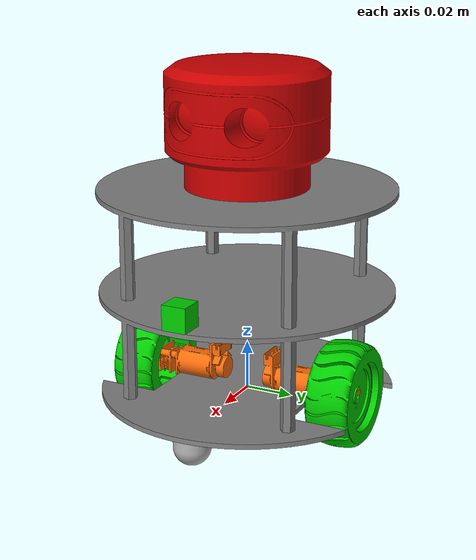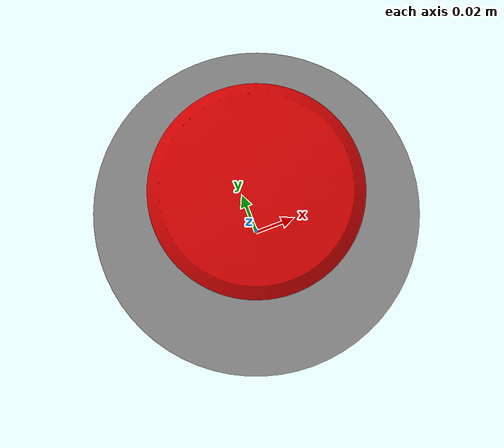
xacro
<?xml version="1.0" ?>
<robot name="hokuyo_laser_robot" xmlns:xacro="http://www.ros.org/wiki/xacro">

<xacro:include filename="$(find hokuyo_laser_robot_description)/urdf/materials.xacro" />
<xacro:include filename="$(find hokuyo_laser_robot_description)/urdf/hokuyo_laser_robot.trans" />
<xacro:include filename="$(find hokuyo_laser_robot_description)/urdf/hokuyo_laser_robot.gazebo" />
<xacro:property name="camera_link" value="0.05" />

<link name="base_link">
  <inertial>
    <origin rpy="0 0 0" xyz="9.043189420795964e-17 -1.0687405679122504e-16 0.04642781600587486"/>
    <mass value="0.0821424569482983"/>
    <inertia ixx="0.000156" ixy="0.0" ixz="0.0" iyy="0.000168" iyz="0.0" izz="0.00015"/>
  </inertial>
  <visual>
    <origin rpy="0 0 0" xyz="0 0 0.0"/>
    <geometry>
      <mesh filename="package://hokuyo_laser_robot_description/meshes/base_link.stl" scale="0.001 0.001 0.001"/>
    </geometry>
    <material name="grey"/>
  </visual>
  <collision>
     <origin rpy="0 0 0" xyz="0 0 0.0"/>
     <geometry>
      <mesh filename="package://hokuyo_laser_robot_description/meshes/base_link.stl" scale="0.001 0.001 0.001"/>
     </geometry>

  </collision>

</link>

<link name="wheelv1_1">
  <inertial>
    <origin rpy="0 0 0" xyz="0.0 0.0 0.0"/>
    <mass value="0.12707504564350522"/>
    <inertia ixx="2.1e-05" ixy="0.0" ixz="0.0" iyy="3.7e-05" iyz="0.0" izz="2.1e-05"/>
  </inertial>
  <visual>
    <origin rpy="0 0 0" xyz="0.0 0.0505 -0.007"/>
    <geometry>
      <mesh filename="package://hokuyo_laser_robot_description/meshes/wheelv1_1.stl" scale="0.001 0.001 0.001"/>
    </geometry>
    <material name="green"/>
  </visual>
  <collision>
    <origin rpy="0 0 0" xyz="0.0 0.0505 -0.007"/>
    <geometry>
      <mesh filename="package://hokuyo_laser_robot_description/meshes/wheelv1_1.stl" scale="0.001 0.001 0.001"/>
    </geometry>
  </collision>
</link>

<link name="wheelv2_1">
  <inertial>
    <origin rpy="0 0 0" xyz="0.0 0.0 0.0"/>
    <mass value="0.12707504564350522"/>
    <inertia ixx="2.1e-05" ixy="0.0" ixz="0.0" iyy="3.7e-05" iyz="0.0" izz="2.1e-05"/>
  </inertial>
  <visual>
    <origin rpy="0 0 0" xyz="0.0 -0.0505 -0.007"/>
    <geometry>
      <mesh filename="package://hokuyo_laser_robot_description/meshes/wheelv2_1.stl" scale="0.001 0.001 0.001"/>
    </geometry>
    <material name="green"/>
  </visual>
  <collision>
    <origin  rpy="0 0 0" xyz="0.0 -0.0505 -0.007"/>
    <geometry>
      <mesh filename="package://hokuyo_laser_robot_description/meshes/wheelv2_1.stl" scale="0.001 0.001 0.001"/>
    </geometry>
  </collision>
</link>

<link name="caster1_1">
  <inertial>
    <origin rpy="0 0 0" xyz="0.047 1.0470961914283186e-18 -0.006130208333333334"/>
    <mass value="0.016646514073208912"/>
    <inertia ixx="0.0" ixy="0.0" ixz="0.0" iyy="0.0" iyz="0.0" izz="0.0"/>
  </inertial>
  <visual>
    <origin rpy="0 0 0" xyz="-0.047 0.0 7.25e-3"/>
    <geometry>
      <mesh filename="package://hokuyo_laser_robot_description/meshes/caster1_1.stl" scale="0.001 0.001 0.001"/>
    </geometry>
    <material name="silver"/>
  </visual>
  <collision>
    <origin rpy="0 0 0" xyz="-0.047 0.0 7.25e-3"/>
    <geometry>
      <mesh filename="package://hokuyo_laser_robot_description/meshes/caster1_1.stl" scale="0.001 0.001 0.001"/>
   </geometry>
  </collision>
</link>

<link name="caster1_2">
  <inertial>
    <origin rpy="0 0 0" xyz="-0.047 1.0470961914283186e-18 -0.006130208333333334"/>
    <mass value="0.016646514073208912"/>
    <inertia ixx="0.0" ixy="0.0" ixz="0.0" iyy="0.0" iyz="0.0" izz="0.0"/>
  </inertial>
  <visual>
    <origin rpy="0 0 0" xyz="0.047 0.0 7.25e-3"/>
    <geometry>
      <mesh filename="package://hokuyo_laser_robot_description/meshes/caster1_2.stl" scale="0.001 0.001 0.001"/>
    </geometry>
    <material name="silver"/>
  </visual>
  <collision>
    <origin rpy="0 0 0" xyz="0.047 0.0 7.25e-3"/>
    <geometry>
      <mesh filename="package://hokuyo_laser_robot_description/meshes/caster1_2.stl" scale="0.001 0.001 0.001"/>
   </geometry>
  </collision>
</link>

<link name="Scanning_LiDAR_v1_1">
  <inertial>
    <!--origin rpy="0 0 0" xyz="0.0004962013390556115 2.772833039489292e-11 0.09116247912672887"/-->
    <origin rpy="0 0 0" xyz="0.0007 5.772833039489292e-11 -0.120"/>
    <mass value="0.20618724895536297"/>
    <inertia ixx="3.9e-05" ixy="0.0" ixz="-2e-06" iyy="3.9e-05" iyz="0.0" izz="6.6e-05"/>
  </inertial>
  <visual>
    <origin rpy="0 0 0" xyz="0.0 0.0 -0.115"/>
    <geometry>
      <mesh filename="package://hokuyo_laser_robot_description/meshes/Scanning_LiDAR_v1_1.stl" scale="0.001 0.001 0.001"/>
    </geometry>
    <material name="red"/>
  </visual>
  <collision>
     <origin rpy="0 0 0" xyz="0.0 0.0 -0.115"/>
   <geometry>
      <mesh filename="package://hokuyo_laser_robot_description/meshes/Scanning_LiDAR_v1_1.stl" scale="0.001 0.001 0.001"/>
      </geometry>
  </collision>
</link>

<link name="camera_link">
    <collision>
      <origin xyz="0 0 0" rpy="0 0 0"/>
      <geometry>
    <box size="0.010 0.010 0.010"/>
      </geometry>
    </collision>

    <visual>
      <origin xyz="0 0 0" rpy="0 0 0"/>
      <geometry>
       <box size="0.010 0.010 0.010"/>
      </geometry>
      <material name="green"/>
    </visual>

    <inertial>
      <mass value="1e-5" />
      <origin xyz="0 0 0" rpy="0 0 0"/>
      <inertia ixx="1e-6" ixy="0" ixz="0" iyy="1e-6" iyz="0" izz="1e-6" />
    </inertial>
  </link>

<link name="motorv1_1">
  <inertial>
    <origin rpy="0 0 0" xyz="2.6844399149895193e-05 0.006886854807477125 0.005517296211487611"/>
    <mass value="0.020522858123399677"/>
    <inertia ixx="2e-06" ixy="0.0" ixz="0.0" iyy="0.0" iyz="0.0" izz="2e-06"/>
  </inertial>
  <visual>
    <origin rpy="0 0 0" xyz="0.0 0.023 -0.007"/>
    <geometry>
      <mesh filename="package://hokuyo_laser_robot_description/meshes/motorv1_1.stl" scale="0.001 0.001 0.001"/>
    </geometry>
    <material name="orange"/>
  </visual>
  <collision>
  <origin rpy="0 0 0" xyz="0.0 0.023 -0.007"/>
    <geometry>
      <mesh filename="package://hokuyo_laser_robot_description/meshes/motorv1_1.stl" scale="0.001 0.001 0.001"/>
    </geometry>
  </collision>
</link>

<link name="motorv2_1">
  <inertial>
    <origin rpy="0 0 0" xyz="-2.6844399149895193e-05 -0.006886854807477125 0.005517296211487611"/>
    <mass value="0.020522858123399677"/>
    <inertia ixx="2e-06" ixy="0.0" ixz="0.0" iyy="0.0" iyz="0.0" izz="2e-06"/>
  </inertial>
  <visual>

   <origin rpy="0 0 0" xyz="0.0 -0.023 -0.007"/>
    <geometry>
      <mesh filename="package://hokuyo_laser_robot_description/meshes/motorv2_1.stl" scale="0.001 0.001 0.001"/>
    </geometry>
    <material name="orange"/>
  </visual>
  <collision>
  <origin  rpy="0 0 0" xyz="0.0 -0.023 -0.007"/>
    <geometry>
      <mesh filename="package://hokuyo_laser_robot_description/meshes/motorv2_1.stl" scale="0.001 0.001 0.001"/>
    </geometry>
  </collision>
</link>

<joint name="right_wheel_joint" type="continuous">
  <origin rpy="0 0 0" xyz="0.0 -0.05 0.00562"/>
  <parent link="base_link"/>
  <child link="wheelv1_1"/>
  <axis xyz="0 1 0" />
</joint>

<joint name="left_wheel_joint" type="continuous">
  <origin rpy="0 0 0" xyz="0.0 0.05 0.00562"/>
  <parent link="base_link"/>
  <child link="wheelv2_1"/>
  <axis xyz="0 1 0" />
</joint>

<joint name="Rigid7" type="fixed">
  <origin rpy="0 0 0" xyz="0.047 0.0 -7.25e-3"/>
  <parent link="base_link"/>
  <child link="caster1_1"/>
</joint>

<joint name="Rigid8" type="fixed">
  <origin rpy="0 0 0" xyz="-0.047 0.0 -7.25e-3"/>
  <parent link="base_link"/>
  <child link="caster1_2"/>
</joint>

<joint name="Rigid6" type="fixed">
  <origin rpy="0 0 0" xyz="0.0 0.0 0.115"/>
  <parent link="base_link"/>
  <child link="Scanning_LiDAR_v1_1"/>
</joint>

<joint name="camera_joint" type="fixed">
    <axis xyz="0 1 0" />

    <origin xyz="0.055 0 0.049" rpy="0 0 0"/>
    <parent link="base_link"/>
    <child link="camera_link"/>
  </joint>

<joint name="Rigid2" type="fixed">
  <origin rpy="0 0 0" xyz="0.0 -0.023 0.007"/>
  <parent link="base_link"/>
  <child link="motorv1_1"/>
</joint>

<joint name="Rigid3" type="fixed">

  <origin rpy="0 0 0" xyz="0.0 0.023 0.007"/>
  <parent link="base_link"/>
  <child link="motorv2_1"/>
</joint>

</robot>

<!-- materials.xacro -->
<robot name="hokuyo_laser_robot" xmlns:xacro="http://www.ros.org/wiki/xacro" >

<!-- Init colour -->
<material name="silver">
  <color rgba="0.700 0.700 0.700 1.000"/>
</material>

  <material name="black">
      <color rgba="0.0 0.0 0.0 1.0"/>
  </material>

  <material name="dark">
    <color rgba="0.3 0.3 0.3 1.0"/>
  </material>
  <material name="light_black">
    <color rgba="0.4 0.4 0.4 1.0"/>
  </material>

  <material name="blue">
    <color rgba="0.0 0.0 0.8 1.0"/>
  </material>

  <material name="green">
    <color rgba="0.0 0.8 0.0 1.0"/>
  </material>

  <material name="grey">
    <color rgba="0.5 0.5 0.5 1.0"/>
  </material>
  <material name="red">
    <color rgba="0.8 0.0 0.0 1.0"/>
  </material>

  <material name="white">
    <color rgba="1.0 1.0 1.0 1.0"/>
  </material>
  <material name="orange">
    <color rgba="${255/255} ${108/255} ${10/255} 1.0"/>
  </material>

  <material name="brown">
    <color rgba="${222/255} ${207/255} ${195/255} 1.0"/>
  </material>
</robot>
